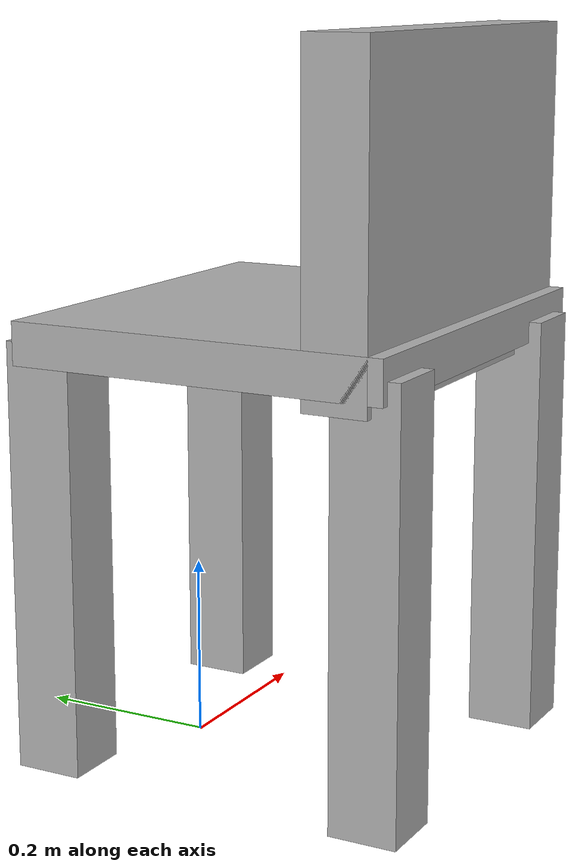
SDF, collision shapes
<?xml version='1.0'?>
<sdf version='1.6'>
  <model name='simple_chair'>
    <link name='link_0'>
      <pose frame=''>0 0 0 0 -0 0</pose>
      <inertial>
        <mass>1.5</mass>
        <inertia>
          <ixx>0.166667</ixx>
          <ixy>0</ixy>
          <ixz>0</ixz>
          <iyy>0.166667</iyy>
          <iyz>0</iyz>
          <izz>0.166667</izz>
        </inertia>
      </inertial>
      <visual name='visual'>
        <pose frame=''>0 0 0 0 -0 0</pose>
        <geometry>
          <mesh>
            <uri>file://isr-testbed/simple_chair/simple_chair.dae</uri>
            <scale>1 1 1</scale>
          </mesh>
        </geometry>
        <material>
          <lighting>1</lighting>
          <script>
            <uri>file://media/materials/scripts/gazebo.material</uri>
            <name>Gazebo/DepthMapVS</name>
          </script>
          <ambient>0.3 0.3 0.3 1</ambient>
          <diffuse>0.7 0.7 0.7 1</diffuse>
          <specular>0.01 0.01 0.01 1</specular>
          <emissive>0 0 0 1</emissive>
        </material>
        <cast_shadows>1</cast_shadows>
        <transparency>0</transparency>
      </visual>
      <collision name='collision_base'>
        <laser_retro>0</laser_retro>
        <max_contacts>10</max_contacts>
        <pose frame=''>0.15 -0.05 0.45 0 -0 0</pose>
        <geometry>
          <box>
            <size>0.5 0.45 0.05</size>
          </box>
        </geometry>
        <surface>
          <friction>
            <ode>
              <mu>1</mu>
              <mu2>1</mu2>
              <fdir1>0 0 0</fdir1>
              <slip1>0</slip1>
              <slip2>0</slip2>
            </ode>
            <torsional>
              <coefficient>1</coefficient>
              <patch_radius>0</patch_radius>
              <surface_radius>0</surface_radius>
              <use_patch_radius>1</use_patch_radius>
              <ode>
                <slip>0</slip>
              </ode>
            </torsional>
          </friction>
          <bounce>
            <restitution_coefficient>0</restitution_coefficient>
            <threshold>1e+06</threshold>
          </bounce>
          <contact>
            <collide_without_contact>0</collide_without_contact>
            <collide_without_contact_bitmask>1</collide_without_contact_bitmask>
            <collide_bitmask>1</collide_bitmask>
            <ode>
              <soft_cfm>0</soft_cfm>
              <soft_erp>0.2</soft_erp>
              <kp>1e+13</kp>
              <kd>1</kd>
              <max_vel>0.01</max_vel>
              <min_depth>0</min_depth>
            </ode>
            <bullet>
              <split_impulse>1</split_impulse>
              <split_impulse_penetration_threshold>-0.01</split_impulse_penetration_threshold>
              <soft_cfm>0</soft_cfm>
              <soft_erp>0.2</soft_erp>
              <kp>1e+13</kp>
              <kd>1</kd>
            </bullet>
          </contact>
        </surface>
      </collision>
      <collision name='collision_back'>
        <laser_retro>0</laser_retro>
        <max_contacts>10</max_contacts>
        <pose frame=''>0.15 -0.22 0.6 0 -0 0</pose>
        <geometry>
          <box>
            <size>0.5 0.075 0.38</size>
          </box>
        </geometry>
        <surface>
          <friction>
            <ode>
              <mu>1</mu>
              <mu2>1</mu2>
              <fdir1>0 0 0</fdir1>
              <slip1>0</slip1>
              <slip2>0</slip2>
            </ode>
            <torsional>
              <coefficient>1</coefficient>
              <patch_radius>0</patch_radius>
              <surface_radius>0</surface_radius>
              <use_patch_radius>1</use_patch_radius>
              <ode>
                <slip>0</slip>
              </ode>
            </torsional>
          </friction>
          <bounce>
            <restitution_coefficient>0</restitution_coefficient>
            <threshold>1e+06</threshold>
          </bounce>
          <contact>
            <collide_without_contact>0</collide_without_contact>
            <collide_without_contact_bitmask>1</collide_without_contact_bitmask>
            <collide_bitmask>1</collide_bitmask>
            <ode>
              <soft_cfm>0</soft_cfm>
              <soft_erp>0.2</soft_erp>
              <kp>1e+13</kp>
              <kd>1</kd>
              <max_vel>0.01</max_vel>
              <min_depth>0</min_depth>
            </ode>
            <bullet>
              <split_impulse>1</split_impulse>
              <split_impulse_penetration_threshold>-0.01</split_impulse_penetration_threshold>
              <soft_cfm>0</soft_cfm>
              <soft_erp>0.2</soft_erp>
              <kp>1e+13</kp>
              <kd>1</kd>
            </bullet>
          </contact>
        </surface>
      </collision>
      <collision name='collision_leg1'>
        <laser_retro>0</laser_retro>
        <max_contacts>10</max_contacts>
        <pose frame=''>0.33 -0.25 0.2 0 -0 0</pose>
        <geometry>
          <box>
            <size>0.08 0.08 0.5</size>
          </box>
        </geometry>
        <surface>
          <friction>
            <ode>
              <mu>1</mu>
              <mu2>1</mu2>
              <fdir1>0 0 0</fdir1>
              <slip1>0</slip1>
              <slip2>0</slip2>
            </ode>
            <torsional>
              <coefficient>1</coefficient>
              <patch_radius>0</patch_radius>
              <surface_radius>0</surface_radius>
              <use_patch_radius>1</use_patch_radius>
              <ode>
                <slip>0</slip>
              </ode>
            </torsional>
          </friction>
          <bounce>
            <restitution_coefficient>0</restitution_coefficient>
            <threshold>1e+06</threshold>
          </bounce>
          <contact>
            <collide_without_contact>0</collide_without_contact>
            <collide_without_contact_bitmask>1</collide_without_contact_bitmask>
            <collide_bitmask>1</collide_bitmask>
            <ode>
              <soft_cfm>0</soft_cfm>
              <soft_erp>0.2</soft_erp>
              <kp>1e+13</kp>
              <kd>1</kd>
              <max_vel>0.01</max_vel>
              <min_depth>0</min_depth>
            </ode>
            <bullet>
              <split_impulse>1</split_impulse>
              <split_impulse_penetration_threshold>-0.01</split_impulse_penetration_threshold>
              <soft_cfm>0</soft_cfm>
              <soft_erp>0.2</soft_erp>
              <kp>1e+13</kp>
              <kd>1</kd>
            </bullet>
          </contact>
        </surface>
      </collision>
      <collision name='collision_leg2'>
        <laser_retro>0</laser_retro>
        <max_contacts>10</max_contacts>
        <pose frame=''>0.33 0.15 0.2 0 -0 0</pose>
        <geometry>
          <box>
            <size>0.08 0.08 0.5</size>
          </box>
        </geometry>
        <surface>
          <friction>
            <ode>
              <mu>1</mu>
              <mu2>1</mu2>
              <fdir1>0 0 0</fdir1>
              <slip1>0</slip1>
              <slip2>0</slip2>
            </ode>
            <torsional>
              <coefficient>1</coefficient>
              <patch_radius>0</patch_radius>
              <surface_radius>0</surface_radius>
              <use_patch_radius>1</use_patch_radius>
              <ode>
                <slip>0</slip>
              </ode>
            </torsional>
          </friction>
          <bounce>
            <restitution_coefficient>0</restitution_coefficient>
            <threshold>1e+06</threshold>
          </bounce>
          <contact>
            <collide_without_contact>0</collide_without_contact>
            <collide_without_contact_bitmask>1</collide_without_contact_bitmask>
            <collide_bitmask>1</collide_bitmask>
            <ode>
              <soft_cfm>0</soft_cfm>
              <soft_erp>0.2</soft_erp>
              <kp>1e+13</kp>
              <kd>1</kd>
              <max_vel>0.01</max_vel>
              <min_depth>0</min_depth>
            </ode>
            <bullet>
              <split_impulse>1</split_impulse>
              <split_impulse_penetration_threshold>-0.01</split_impulse_penetration_threshold>
              <soft_cfm>0</soft_cfm>
              <soft_erp>0.2</soft_erp>
              <kp>1e+13</kp>
              <kd>1</kd>
            </bullet>
          </contact>
        </surface>
      </collision>
      <collision name='collision_leg3'>
        <laser_retro>0</laser_retro>
        <max_contacts>10</max_contacts>
        <pose frame=''>-0.05 -0.25 0.2 0 -0 0</pose>
        <geometry>
          <box>
            <size>0.08 0.08 0.5</size>
          </box>
        </geometry>
        <surface>
          <friction>
            <ode>
              <mu>1</mu>
              <mu2>1</mu2>
              <fdir1>0 0 0</fdir1>
              <slip1>0</slip1>
              <slip2>0</slip2>
            </ode>
            <torsional>
              <coefficient>1</coefficient>
              <patch_radius>0</patch_radius>
              <surface_radius>0</surface_radius>
              <use_patch_radius>1</use_patch_radius>
              <ode>
                <slip>0</slip>
              </ode>
            </torsional>
          </friction>
          <bounce>
            <restitution_coefficient>0</restitution_coefficient>
            <threshold>1e+06</threshold>
          </bounce>
          <contact>
            <collide_without_contact>0</collide_without_contact>
            <collide_without_contact_bitmask>1</collide_without_contact_bitmask>
            <collide_bitmask>1</collide_bitmask>
            <ode>
              <soft_cfm>0</soft_cfm>
              <soft_erp>0.2</soft_erp>
              <kp>1e+13</kp>
              <kd>1</kd>
              <max_vel>0.01</max_vel>
              <min_depth>0</min_depth>
            </ode>
            <bullet>
              <split_impulse>1</split_impulse>
              <split_impulse_penetration_threshold>-0.01</split_impulse_penetration_threshold>
              <soft_cfm>0</soft_cfm>
              <soft_erp>0.2</soft_erp>
              <kp>1e+13</kp>
              <kd>1</kd>
            </bullet>
          </contact>
        </surface>
      </collision>
      <collision name='collision_leg4'>
        <laser_retro>0</laser_retro>
        <max_contacts>10</max_contacts>
        <pose frame=''>-0.05 0.15 0.2 0 -0 0</pose>
        <geometry>
          <box>
            <size>0.08 0.08 0.5</size>
          </box>
        </geometry>
        <surface>
          <friction>
            <ode>
              <mu>1</mu>
              <mu2>1</mu2>
              <fdir1>0 0 0</fdir1>
              <slip1>0</slip1>
              <slip2>0</slip2>
            </ode>
            <torsional>
              <coefficient>1</coefficient>
              <patch_radius>0</patch_radius>
              <surface_radius>0</surface_radius>
              <use_patch_radius>1</use_patch_radius>
              <ode>
                <slip>0</slip>
              </ode>
            </torsional>
          </friction>
          <bounce>
            <restitution_coefficient>0</restitution_coefficient>
            <threshold>1e+06</threshold>
          </bounce>
          <contact>
            <collide_without_contact>0</collide_without_contact>
            <collide_without_contact_bitmask>1</collide_without_contact_bitmask>
            <collide_bitmask>1</collide_bitmask>
            <ode>
              <soft_cfm>0</soft_cfm>
              <soft_erp>0.2</soft_erp>
              <kp>1e+13</kp>
              <kd>1</kd>
              <max_vel>0.01</max_vel>
              <min_depth>0</min_depth>
            </ode>
            <bullet>
              <split_impulse>1</split_impulse>
              <split_impulse_penetration_threshold>-0.01</split_impulse_penetration_threshold>
              <soft_cfm>0</soft_cfm>
              <soft_erp>0.2</soft_erp>
              <kp>1e+13</kp>
              <kd>1</kd>
            </bullet>
          </contact>
        </surface>
      </collision>
    </link>
    <static>0</static>
    <allow_auto_disable>1</allow_auto_disable>
  </model>
</sdf>
